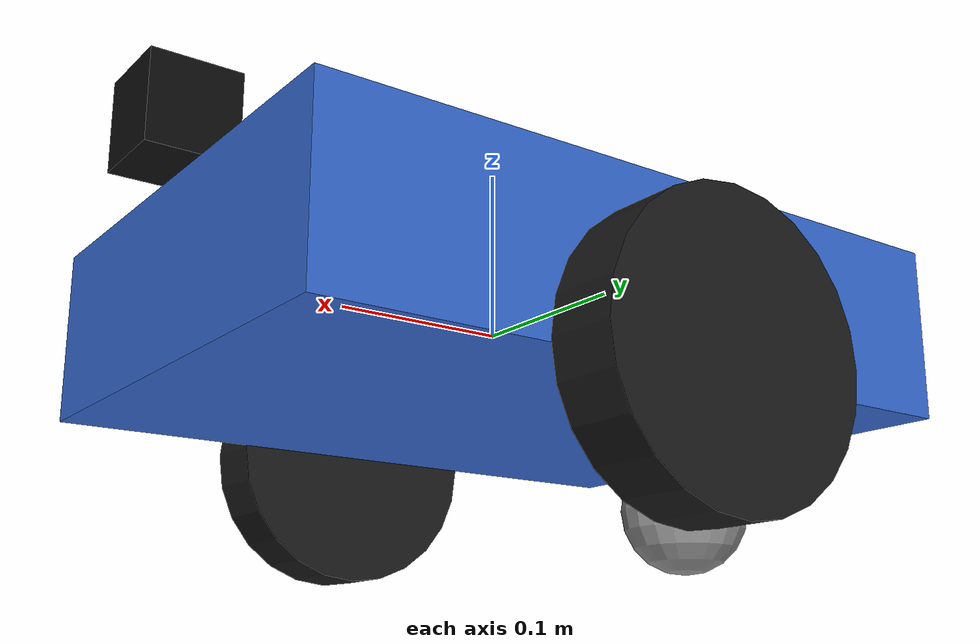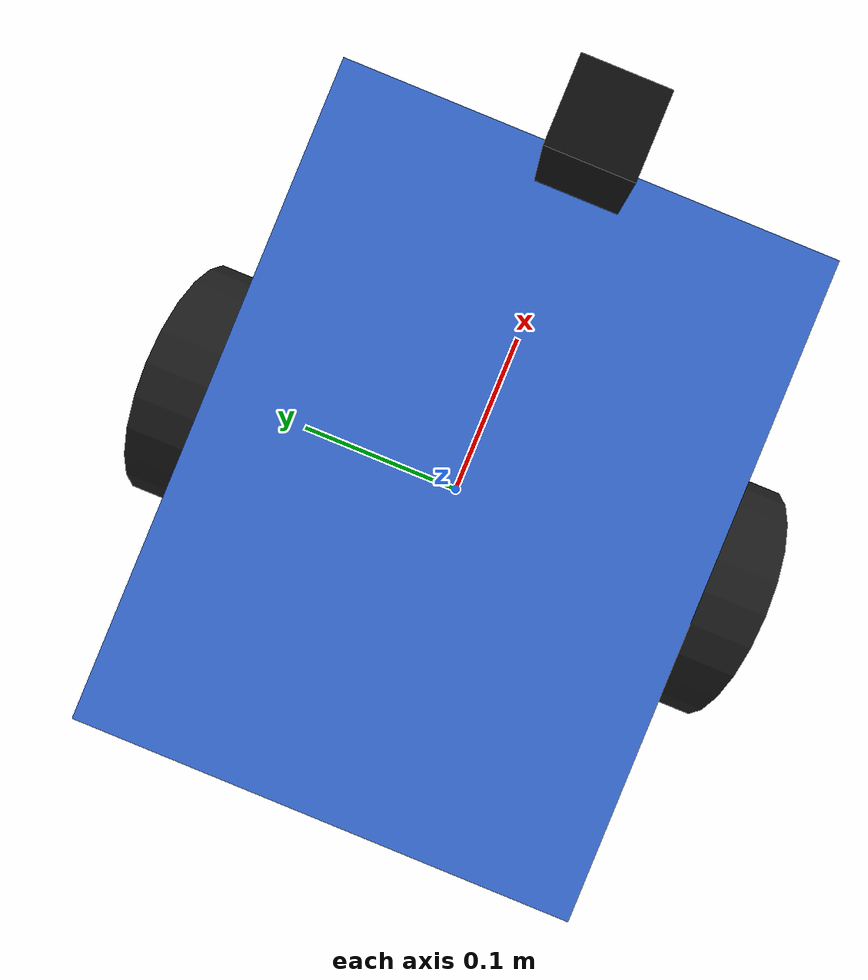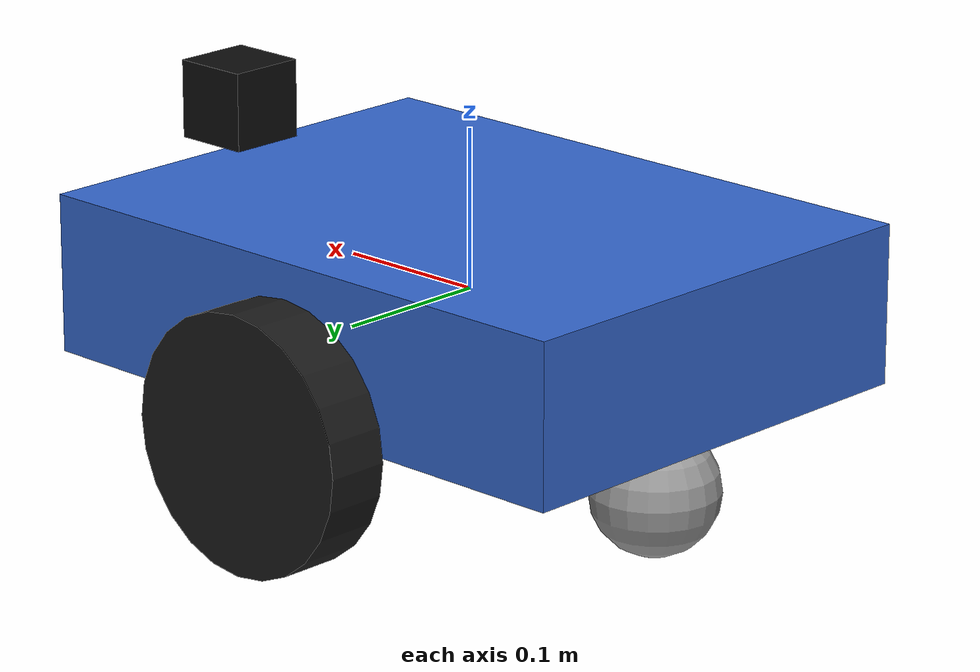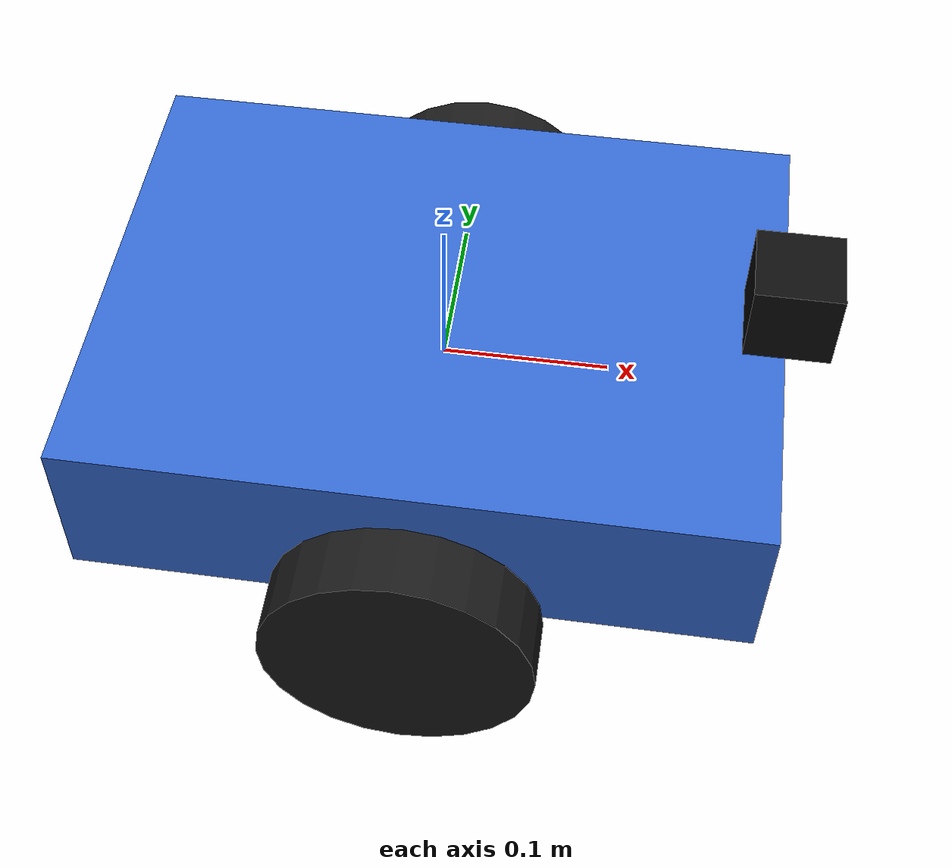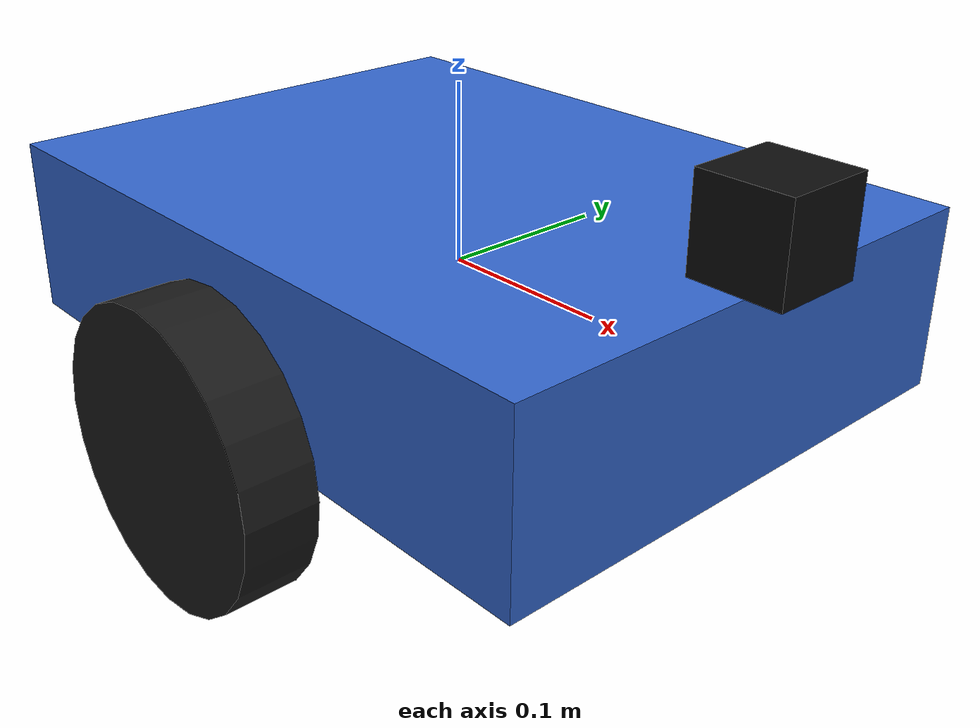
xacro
<?xml version="1.0"?>
<robot name="surveillance_robot" xmlns:xacro="http://www.ros.org/wiki/xacro">

  <link name="base_link">
    <visual><origin xyz="0 0 0" rpy="0 0 0"/>
      <geometry><box size="0.4 0.3 0.1"/></geometry>
      <material name="blue"><color rgba="0.2 0.4 0.8 1"/></material></visual>
    <collision><origin xyz="0 0 0" rpy="0 0 0"/>
      <geometry><box size="0.4 0.3 0.1"/></geometry></collision>
    <inertial><mass value="5.0"/><origin xyz="0 0 0" rpy="0 0 0"/>
      <inertia ixx="0.1" ixy="0" ixz="0" iyy="0.1" iyz="0" izz="0.1"/></inertial>
  </link>

  <joint name="left_wheel_joint" type="continuous">
    <parent link="base_link"/><child link="left_wheel"/>
    <origin xyz="0.0 0.175 -0.05" rpy="-1.5707 0 0"/>
    <axis xyz="0 0 1"/>
  </joint>
  <link name="left_wheel">
    <visual><geometry><cylinder radius="0.08" length="0.04"/></geometry>
      <material name="black"><color rgba="0.1 0.1 0.1 1"/></material></visual>
    <collision><geometry><cylinder radius="0.08" length="0.04"/></geometry></collision>
    <inertial><mass value="0.5"/>
      <inertia ixx="0.001" ixy="0" ixz="0" iyy="0.001" iyz="0" izz="0.001"/></inertial>
  </link>

  <joint name="right_wheel_joint" type="continuous">
    <parent link="base_link"/><child link="right_wheel"/>
    <origin xyz="0.0 -0.175 -0.05" rpy="-1.5707 0 0"/>
    <axis xyz="0 0 1"/>
  </joint>
  <link name="right_wheel">
    <visual><geometry><cylinder radius="0.08" length="0.04"/></geometry>
      <material name="black"><color rgba="0.1 0.1 0.1 1"/></material></visual>
    <collision><geometry><cylinder radius="0.08" length="0.04"/></geometry></collision>
    <inertial><mass value="0.5"/>
      <inertia ixx="0.001" ixy="0" ixz="0" iyy="0.001" iyz="0" izz="0.001"/></inertial>
  </link>

  <joint name="caster_joint" type="fixed">
    <parent link="base_link"/><child link="caster_wheel"/>
    <origin xyz="-0.15 0.0 -0.09" rpy="0 0 0"/>
  </joint>
  <link name="caster_wheel">
    <visual><geometry><sphere radius="0.04"/></geometry>
      <material name="grey"><color rgba="0.6 0.6 0.6 1"/></material></visual>
    <collision><geometry><sphere radius="0.04"/></geometry></collision>
    <inertial><mass value="0.1"/>
      <inertia ixx="0.0001" ixy="0" ixz="0" iyy="0.0001" iyz="0" izz="0.0001"/></inertial>
  </link>

  <joint name="camera_joint" type="fixed">
    <parent link="base_link"/><child link="camera_link"/>
    <origin xyz="0.2 0 0.08" rpy="0 0 0"/>
  </joint>
  <link name="camera_link">
    <visual><geometry><box size="0.05 0.05 0.05"/></geometry>
      <material name="cam_black"><color rgba="0.05 0.05 0.05 1"/></material></visual>
    <collision><geometry><box size="0.05 0.05 0.05"/></geometry></collision>
    <inertial><mass value="0.1"/>
      <inertia ixx="0.0001" ixy="0" ixz="0" iyy="0.0001" iyz="0" izz="0.0001"/></inertial>
  </link>

  <gazebo reference="caster_wheel">
    <mu1>0.0</mu1><mu2>0.0</mu2>
    <kp>1000000.0</kp><kd>100.0</kd>
  </gazebo>
  <gazebo reference="left_wheel">
    <mu1>1.5</mu1><mu2>1.5</mu2>
    <kp>1000000.0</kp><kd>100.0</kd>
  </gazebo>
  <gazebo reference="right_wheel">
    <mu1>1.5</mu1><mu2>1.5</mu2>
    <kp>1000000.0</kp><kd>100.0</kd>
  </gazebo>

  <gazebo reference="camera_link">
    <sensor type="camera" name="surveillance_camera">
      <update_rate>30</update_rate>
      <camera>
        <horizontal_fov>1.3962634</horizontal_fov>
        <image><width>640</width><height>480</height><format>R8G8B8</format></image>
        <clip><near>0.1</near><far>100</far></clip>
      </camera>
      <plugin name="camera_controller" filename="libgazebo_ros_camera.so">
        <ros><remapping>image_raw:=/camera/image_raw</remapping></ros>
        <camera_name>surveillance_camera</camera_name>
        <frame_name>camera_link</frame_name>
      </plugin>
    </sensor>
  </gazebo>

  <gazebo>
    <plugin name="diff_drive" filename="libgazebo_ros_diff_drive.so">
      <ros><remapping>cmd_vel:=/cmd_vel</remapping></ros>
      <left_joint>left_wheel_joint</left_joint>
      <right_joint>right_wheel_joint</right_joint>
      <wheel_separation>0.35</wheel_separation>
      <wheel_diameter>0.16</wheel_diameter>
      <max_wheel_torque>20</max_wheel_torque>
      <publish_odom>true</publish_odom>
      <publish_odom_tf>true</publish_odom_tf>
      <publish_wheel_tf>true</publish_wheel_tf>
      <odometry_frame>odom</odometry_frame>
      <robot_base_frame>base_link</robot_base_frame>
    </plugin>
  </gazebo>

</robot>
